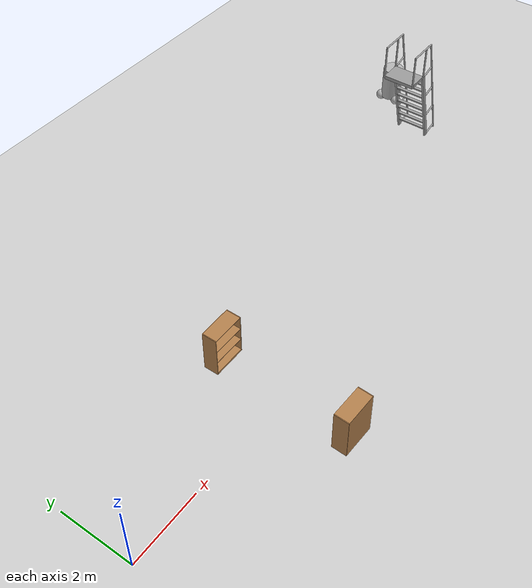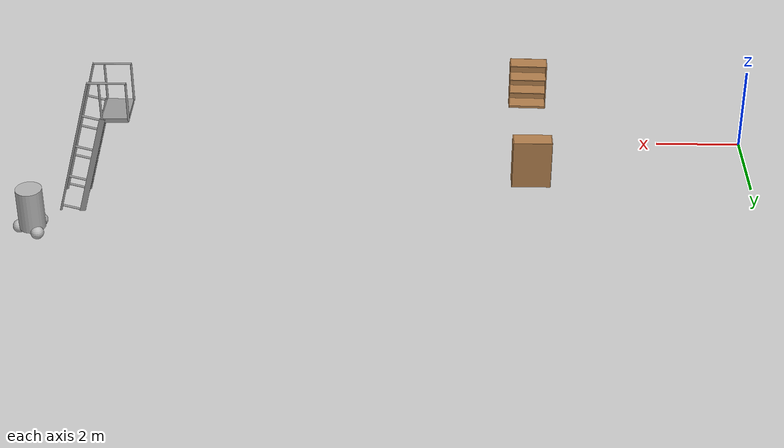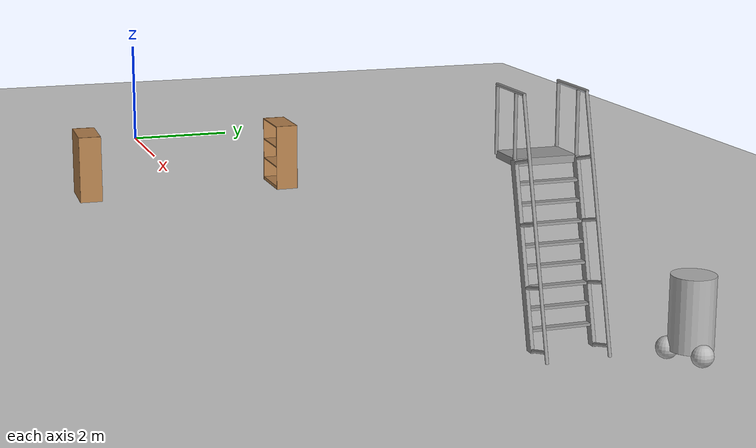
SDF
<sdf version="1.7">
 <world name="default">
  <model name="ground_plane">
   <static>1</static>
   <link name="link">
    <collision name="collision">
     <geometry><plane><normal>0 0 1</normal><size>100 100</size></plane></geometry>
     <surface>
      <contact><collide_bitmask>65535</collide_bitmask></contact>
      <friction><ode><mu>100</mu><mu2>50</mu2></ode></friction>
     </surface>
    </collision>
    <visual name="visual">
     <cast_shadows>0</cast_shadows>
     <geometry><plane><normal>0 0 1</normal><size>100 100</size></plane></geometry>
     <material>
      <script><uri>file://media/materials/scripts/gazebo.material</uri><name>Gazebo/Grey</name></script>
     </material>
    </visual>
   </link>
  </model>
  <model name="ladder_75deg_2rails">
   <static>1</static>
   <link name="step0">
    <pose>0 0.071453 0.266667 0 -0 0</pose>
    <inertial>
     <mass>9.75482</mass>
     <inertia>
      <ixx>0.00957124</ixx>
      <iyy>0.65963</iyy>
      <izz>0.666842</izz>
      <ixy>0</ixy>
      <ixz>0</ixz>
      <iyz>0</iyz>
     </inertia>
    </inertial>
    <collision name="collision"><geometry><box><size>0.9 0.1016 0.0381</size></box></geometry></collision>
    <visual name="visual">
     <geometry><box><size>0.9 0.1016 0.0381</size></box></geometry>
     <material>
      <script><uri>file://media/materials/scripts/gazebo.material</uri><name>Gazebo/Grey</name></script>
     </material>
    </visual>
   </link>
   <link name="step1">
    <pose>0 0.142906 0.533333 0 -0 0</pose>
    <inertial>
     <mass>9.75482</mass>
     <inertia>
      <ixx>0.00957124</ixx>
      <iyy>0.65963</iyy>
      <izz>0.666842</izz>
      <ixy>0</ixy>
      <ixz>0</ixz>
      <iyz>0</iyz>
     </inertia>
    </inertial>
    <collision name="collision"><geometry><box><size>0.9 0.1016 0.0381</size></box></geometry></collision>
    <visual name="visual">
     <geometry><box><size>0.9 0.1016 0.0381</size></box></geometry>
     <material>
      <script><uri>file://media/materials/scripts/gazebo.material</uri><name>Gazebo/Grey</name></script>
     </material>
    </visual>
   </link>
   <link name="step2">
    <pose>0 0.214359 0.8 0 -0 0</pose>
    <inertial>
     <mass>9.75482</mass>
     <inertia>
      <ixx>0.00957124</ixx>
      <iyy>0.65963</iyy>
      <izz>0.666842</izz>
      <ixy>0</ixy>
      <ixz>0</ixz>
      <iyz>0</iyz>
     </inertia>
    </inertial>
    <collision name="collision"><geometry><box><size>0.9 0.1016 0.0381</size></box></geometry></collision>
    <visual name="visual">
     <geometry><box><size>0.9 0.1016 0.0381</size></box></geometry>
     <material>
      <script><uri>file://media/materials/scripts/gazebo.material</uri><name>Gazebo/Grey</name></script>
     </material>
    </visual>
   </link>
   <link name="step3">
    <pose>0 0.285812 1.06667 0 -0 0</pose>
    <inertial>
     <mass>9.75482</mass>
     <inertia>
      <ixx>0.00957124</ixx>
      <iyy>0.65963</iyy>
      <izz>0.666842</izz>
      <ixy>0</ixy>
      <ixz>0</ixz>
      <iyz>0</iyz>
     </inertia>
    </inertial>
    <collision name="collision"><geometry><box><size>0.9 0.1016 0.0381</size></box></geometry></collision>
    <visual name="visual">
     <geometry><box><size>0.9 0.1016 0.0381</size></box></geometry>
     <material>
      <script><uri>file://media/materials/scripts/gazebo.material</uri><name>Gazebo/Grey</name></script>
     </material>
    </visual>
   </link>
   <link name="step4">
    <pose>0 0.357266 1.33333 0 -0 0</pose>
    <inertial>
     <mass>9.75482</mass>
     <inertia>
      <ixx>0.00957124</ixx>
      <iyy>0.65963</iyy>
      <izz>0.666842</izz>
      <ixy>0</ixy>
      <ixz>0</ixz>
      <iyz>0</iyz>
     </inertia>
    </inertial>
    <collision name="collision"><geometry><box><size>0.9 0.1016 0.0381</size></box></geometry></collision>
    <visual name="visual">
     <geometry><box><size>0.9 0.1016 0.0381</size></box></geometry>
     <material>
      <script><uri>file://media/materials/scripts/gazebo.material</uri><name>Gazebo/Grey</name></script>
     </material>
    </visual>
   </link>
   <link name="step5">
    <pose>0 0.428719 1.6 0 -0 0</pose>
    <inertial>
     <mass>9.75482</mass>
     <inertia>
      <ixx>0.00957124</ixx>
      <iyy>0.65963</iyy>
      <izz>0.666842</izz>
      <ixy>0</ixy>
      <ixz>0</ixz>
      <iyz>0</iyz>
     </inertia>
    </inertial>
    <collision name="collision"><geometry><box><size>0.9 0.1016 0.0381</size></box></geometry></collision>
    <visual name="visual">
     <geometry><box><size>0.9 0.1016 0.0381</size></box></geometry>
     <material>
      <script><uri>file://media/materials/scripts/gazebo.material</uri><name>Gazebo/Grey</name></script>
     </material>
    </visual>
   </link>
   <link name="step6">
    <pose>0 0.500172 1.86667 0 -0 0</pose>
    <inertial>
     <mass>9.75482</mass>
     <inertia>
      <ixx>0.00957124</ixx>
      <iyy>0.65963</iyy>
      <izz>0.666842</izz>
      <ixy>0</ixy>
      <ixz>0</ixz>
      <iyz>0</iyz>
     </inertia>
    </inertial>
    <collision name="collision"><geometry><box><size>0.9 0.1016 0.0381</size></box></geometry></collision>
    <visual name="visual">
     <geometry><box><size>0.9 0.1016 0.0381</size></box></geometry>
     <material>
      <script><uri>file://media/materials/scripts/gazebo.material</uri><name>Gazebo/Grey</name></script>
     </material>
    </visual>
   </link>
   <link name="step7">
    <pose>0 0.571625 2.13333 0 -0 0</pose>
    <inertial>
     <mass>9.75482</mass>
     <inertia>
      <ixx>0.00957124</ixx>
      <iyy>0.65963</iyy>
      <izz>0.666842</izz>
      <ixy>0</ixy>
      <ixz>0</ixz>
      <iyz>0</iyz>
     </inertia>
    </inertial>
    <collision name="collision"><geometry><box><size>0.9 0.1016 0.0381</size></box></geometry></collision>
    <visual name="visual">
     <geometry><box><size>0.9 0.1016 0.0381</size></box></geometry>
     <material>
      <script><uri>file://media/materials/scripts/gazebo.material</uri><name>Gazebo/Grey</name></script>
     </material>
    </visual>
   </link>
   <link name="landing">
    <pose>0 0.943078 2.4 0 -0 0</pose>
    <inertial>
     <mass>57.6072</mass>
     <inertia><ixx>1.73518</ixx><iyy>3.89545</iyy><izz>5.6167</izz><ixy>0</ixy><ixz>0</ixz><iyz>0</iyz></inertia>
    </inertial>
    <collision name="collision"><geometry><box><size>0.9 0.6 0.1016</size></box></geometry></collision>
    <visual name="visual">
     <geometry><box><size>0.9 0.6 0.1016</size></box></geometry>
     <material>
      <script><uri>file://media/materials/scripts/gazebo.material</uri><name>Gazebo/Grey</name></script>
     </material>
    </visual>
   </link>
   <link name="left_side_wall">
    <pose>-0.45 0.321539 1.2 1.309 -0 0</pose>
    <collision name="collision"><geometry><box><size>0.0508 2.56466 0.13</size></box></geometry></collision>
    <visual name="visual">
     <geometry><box><size>0.0508 2.56466 0.13</size></box></geometry>
     <material>
      <script><uri>file://media/materials/scripts/gazebo.material</uri><name>Gazebo/Grey</name></script>
     </material>
    </visual>
   </link>
   <link name="right_side_wall">
    <pose>0.45 0.321539 1.2 1.309 -0 0</pose>
    <collision name="collision"><geometry><box><size>0.0508 2.56466 0.13</size></box></geometry></collision>
    <visual name="visual">
     <geometry><box><size>0.0508 2.56466 0.13</size></box></geometry>
     <material>
      <script><uri>file://media/materials/scripts/gazebo.material</uri><name>Gazebo/Grey</name></script>
     </material>
    </visual>
   </link>
   <link name="left_railing_long">
    <pose>-0.45 -0.053461 1.66651 -0.261799 0 0</pose>
    <collision name="collision">
     <geometry><cylinder><radius>0.02413</radius><length>3.51529</length></cylinder></geometry>
    </collision>
    <visual name="visual">
     <geometry><cylinder><radius>0.02413</radius><length>3.51529</length></cylinder></geometry>
     <material>
      <script><uri>file://media/materials/scripts/gazebo.material</uri><name>Gazebo/Grey</name></script>
     </material>
    </visual>
   </link>
   <link name="left_railing_upright0">
    <pose>-0.45 -0.210089 0.056293 1.309 -0 0</pose>
    <collision name="collision">
     <geometry><cylinder><radius>0.02413</radius><length>0.482963</length></cylinder></geometry>
    </collision>
    <visual name="visual">
     <geometry><cylinder><radius>0.02413</radius><length>0.482963</length></cylinder></geometry>
     <material>
      <script><uri>file://media/materials/scripts/gazebo.material</uri><name>Gazebo/Grey</name></script>
     </material>
    </visual>
   </link>
   <link name="left_railing_upright1">
    <pose>-0.45 0.00427 0.856293 1.309 -0 0</pose>
    <collision name="collision">
     <geometry><cylinder><radius>0.02413</radius><length>0.482963</length></cylinder></geometry>
    </collision>
    <visual name="visual">
     <geometry><cylinder><radius>0.02413</radius><length>0.482963</length></cylinder></geometry>
     <material>
      <script><uri>file://media/materials/scripts/gazebo.material</uri><name>Gazebo/Grey</name></script>
     </material>
    </visual>
   </link>
   <link name="left_railing_upright2">
    <pose>-0.45 0.21863 1.65629 1.309 -0 0</pose>
    <collision name="collision">
     <geometry><cylinder><radius>0.02413</radius><length>0.482963</length></cylinder></geometry>
    </collision>
    <visual name="visual">
     <geometry><cylinder><radius>0.02413</radius><length>0.482963</length></cylinder></geometry>
     <material>
      <script><uri>file://media/materials/scripts/gazebo.material</uri><name>Gazebo/Grey</name></script>
     </material>
    </visual>
   </link>
   <link name="left_railing_upright3">
    <pose>-0.45 0.432989 2.45629 1.309 -0 0</pose>
    <collision name="collision">
     <geometry><cylinder><radius>0.02413</radius><length>0.482963</length></cylinder></geometry>
    </collision>
    <visual name="visual">
     <geometry><cylinder><radius>0.02413</radius><length>0.482963</length></cylinder></geometry>
     <material>
      <script><uri>file://media/materials/scripts/gazebo.material</uri><name>Gazebo/Grey</name></script>
     </material>
    </visual>
   </link>
   <link name="left_railing_landing_top">
    <pose>-0.45 0.818078 3.35714 1.5708 -0 0</pose>
    <collision name="collision">
     <geometry><cylinder><radius>0.02413</radius><length>0.87413</length></cylinder></geometry>
    </collision>
    <visual name="visual">
     <geometry><cylinder><radius>0.02413</radius><length>0.87413</length></cylinder></geometry>
     <material>
      <script><uri>file://media/materials/scripts/gazebo.material</uri><name>Gazebo/Grey</name></script>
     </material>
    </visual>
   </link>
   <link name="left_railing_landing_upright_0">
    <pose>-0.45 0.643078 2.86651 0 -0 0</pose>
    <collision name="collision">
     <geometry><cylinder><radius>0.02413</radius><length>0.933013</length></cylinder></geometry>
    </collision>
    <visual name="visual">
     <geometry><cylinder><radius>0.02413</radius><length>0.933013</length></cylinder></geometry>
     <material>
      <script><uri>file://media/materials/scripts/gazebo.material</uri><name>Gazebo/Grey</name></script>
     </material>
    </visual>
   </link>
   <link name="left_railing_landing_upright_1">
    <pose>-0.45 1.24308 2.86651 0 -0 0</pose>
    <collision name="collision">
     <geometry><cylinder><radius>0.02413</radius><length>0.933013</length></cylinder></geometry>
    </collision>
    <visual name="visual">
     <geometry><cylinder><radius>0.02413</radius><length>0.933013</length></cylinder></geometry>
     <material>
      <script><uri>file://media/materials/scripts/gazebo.material</uri><name>Gazebo/Grey</name></script>
     </material>
    </visual>
   </link>
   <link name="right_railing_long">
    <pose>0.45 -0.053461 1.66651 -0.261799 0 0</pose>
    <collision name="collision">
     <geometry><cylinder><radius>0.02413</radius><length>3.51529</length></cylinder></geometry>
    </collision>
    <visual name="visual">
     <geometry><cylinder><radius>0.02413</radius><length>3.51529</length></cylinder></geometry>
     <material>
      <script><uri>file://media/materials/scripts/gazebo.material</uri><name>Gazebo/Grey</name></script>
     </material>
    </visual>
   </link>
   <link name="right_railing_upright0">
    <pose>0.45 -0.210089 0.056293 1.309 -0 0</pose>
    <collision name="collision">
     <geometry><cylinder><radius>0.02413</radius><length>0.482963</length></cylinder></geometry>
    </collision>
    <visual name="visual">
     <geometry><cylinder><radius>0.02413</radius><length>0.482963</length></cylinder></geometry>
     <material>
      <script><uri>file://media/materials/scripts/gazebo.material</uri><name>Gazebo/Grey</name></script>
     </material>
    </visual>
   </link>
   <link name="right_railing_upright1">
    <pose>0.45 0.00427 0.856293 1.309 -0 0</pose>
    <collision name="collision">
     <geometry><cylinder><radius>0.02413</radius><length>0.482963</length></cylinder></geometry>
    </collision>
    <visual name="visual">
     <geometry><cylinder><radius>0.02413</radius><length>0.482963</length></cylinder></geometry>
     <material>
      <script><uri>file://media/materials/scripts/gazebo.material</uri><name>Gazebo/Grey</name></script>
     </material>
    </visual>
   </link>
   <link name="right_railing_upright2">
    <pose>0.45 0.21863 1.65629 1.309 -0 0</pose>
    <collision name="collision">
     <geometry><cylinder><radius>0.02413</radius><length>0.482963</length></cylinder></geometry>
    </collision>
    <visual name="visual">
     <geometry><cylinder><radius>0.02413</radius><length>0.482963</length></cylinder></geometry>
     <material>
      <script><uri>file://media/materials/scripts/gazebo.material</uri><name>Gazebo/Grey</name></script>
     </material>
    </visual>
   </link>
   <link name="right_railing_upright3">
    <pose>0.45 0.432989 2.45629 1.309 -0 0</pose>
    <collision name="collision">
     <geometry><cylinder><radius>0.02413</radius><length>0.482963</length></cylinder></geometry>
    </collision>
    <visual name="visual">
     <geometry><cylinder><radius>0.02413</radius><length>0.482963</length></cylinder></geometry>
     <material>
      <script><uri>file://media/materials/scripts/gazebo.material</uri><name>Gazebo/Grey</name></script>
     </material>
    </visual>
   </link>
   <link name="right_railing_landing_top">
    <pose>0.45 0.818078 3.35714 1.5708 -0 0</pose>
    <collision name="collision">
     <geometry><cylinder><radius>0.02413</radius><length>0.87413</length></cylinder></geometry>
    </collision>
    <visual name="visual">
     <geometry><cylinder><radius>0.02413</radius><length>0.87413</length></cylinder></geometry>
     <material>
      <script><uri>file://media/materials/scripts/gazebo.material</uri><name>Gazebo/Grey</name></script>
     </material>
    </visual>
   </link>
   <link name="right_railing_landing_upright_0">
    <pose>0.45 0.643078 2.86651 0 -0 0</pose>
    <collision name="collision">
     <geometry><cylinder><radius>0.02413</radius><length>0.933013</length></cylinder></geometry>
    </collision>
    <visual name="visual">
     <geometry><cylinder><radius>0.02413</radius><length>0.933013</length></cylinder></geometry>
     <material>
      <script><uri>file://media/materials/scripts/gazebo.material</uri><name>Gazebo/Grey</name></script>
     </material>
    </visual>
   </link>
   <link name="right_railing_landing_upright_1">
    <pose>0.45 1.24308 2.86651 0 -0 0</pose>
    <collision name="collision">
     <geometry><cylinder><radius>0.02413</radius><length>0.933013</length></cylinder></geometry>
    </collision>
    <visual name="visual">
     <geometry><cylinder><radius>0.02413</radius><length>0.933013</length></cylinder></geometry>
     <material>
      <script><uri>file://media/materials/scripts/gazebo.material</uri><name>Gazebo/Grey</name></script>
     </material>
    </visual>
   </link>
   <pose>15.5555 2.68019 0 0 -0 1.57394</pose>
  </model>
  <model name="HumanoidRobot">
   <static>0</static>
   <link name="body">
    <pose>0 0 0.5 0 -0 0</pose>
    <visual name="body_visual">
     <geometry><cylinder><radius>0.3</radius><length>1</length></cylinder></geometry>
     <material><ambient>0.7 0.7 0.7 1</ambient></material>
    </visual>
    <collision name="body_collision">
     <geometry><cylinder><radius>0.3</radius><length>1</length></cylinder></geometry>
    </collision>
    <inertial>
     <inertia><ixx>1</ixx><ixy>0</ixy><ixz>0</ixz><iyy>1</iyy><iyz>0</iyz><izz>1</izz></inertia>
     <mass>1</mass>
    </inertial>
   </link>
   <link name="front_ball">
    <pose>0.3 0 0 0 -0 0</pose>
    <visual name="front_ball_visual"><geometry><sphere><radius>0.15</radius></sphere></geometry></visual>
    <collision name="front_ball_collision"><geometry><sphere><radius>0.15</radius></sphere></geometry></collision>
    <inertial>
     <inertia><ixx>1</ixx><ixy>0</ixy><ixz>0</ixz><iyy>1</iyy><iyz>0</iyz><izz>1</izz></inertia>
     <mass>1</mass>
    </inertial>
   </link>
   <joint name="front_ball_joint" type="fixed">
    <parent>body</parent>
    <child>front_ball</child>
    <pose>0.3 0 0 0 -0 0</pose>
   </joint>
   <link name="left_ball">
    <pose>-0.15 0.26 0 0 -0 0</pose>
    <visual name="left_ball_visual"><geometry><sphere><radius>0.15</radius></sphere></geometry></visual>
    <collision name="left_ball_collision"><geometry><sphere><radius>0.15</radius></sphere></geometry></collision>
    <inertial>
     <inertia><ixx>1</ixx><ixy>0</ixy><ixz>0</ixz><iyy>1</iyy><iyz>0</iyz><izz>1</izz></inertia>
     <mass>1</mass>
    </inertial>
   </link>
   <joint name="left_ball_joint" type="fixed">
    <parent>body</parent>
    <child>left_ball</child>
    <pose>-0.15 0.26 0 0 -0 0</pose>
   </joint>
   <link name="right_ball">
    <pose>-0.15 -0.26 0 0 -0 0</pose>
    <visual name="right_ball_visual"><geometry><sphere><radius>0.15</radius></sphere></geometry></visual>
    <collision name="right_ball_collision"><geometry><sphere><radius>0.15</radius></sphere></geometry></collision>
    <inertial>
     <inertia><ixx>1</ixx><ixy>0</ixy><ixz>0</ixz><iyy>1</iyy><iyz>0</iyz><izz>1</izz></inertia>
     <mass>1</mass>
    </inertial>
   </link>
   <joint name="right_ball_joint" type="fixed">
    <parent>body</parent>
    <child>right_ball</child>
    <pose>-0.15 -0.26 0 0 -0 0</pose>
   </joint>
   <joint name="front_left_joint" type="fixed"><parent>front_ball</parent><child>left_ball</child></joint>
   <joint name="front_right_joint" type="fixed"><parent>front_ball</parent><child>right_ball</child></joint>
   <joint name="left_right_joint" type="fixed"><parent>left_ball</parent><child>right_ball</child></joint>
   <pose>16.5246 4.04315 0.15 0 -1e-06 -0.00089</pose>
  </model>
  <model name="bookshelf_1">
   <static>1</static>
   <link name="link">
    <inertial><mass>1</mass></inertial>
    <collision name="back">
     <pose>0 0.005 0.6 0 -0 0</pose>
     <geometry><box><size>0.9 0.01 1.2</size></box></geometry>
    </collision>
    <visual name="visual1">
     <pose>0 0.005 0.6 0 -0 0</pose>
     <geometry><box><size>0.9 0.01 1.2</size></box></geometry>
     <material>
      <script><uri>file://media/materials/scripts/gazebo.material</uri><name>Gazebo/Wood</name></script>
     </material>
    </visual>
    <collision name="left_side">
     <pose>0.45 -0.195 0.6 0 -0 0</pose>
     <geometry><box><size>0.02 0.4 1.2</size></box></geometry>
    </collision>
    <visual name="visual2">
     <pose>0.45 -0.195 0.6 0 -0 0</pose>
     <geometry><box><size>0.02 0.4 1.2</size></box></geometry>
     <material>
      <script><uri>file://media/materials/scripts/gazebo.material</uri><name>Gazebo/Wood</name></script>
     </material>
    </visual>
    <collision name="right_side">
     <pose>-0.45 -0.195 0.6 0 -0 0</pose>
     <geometry><box><size>0.02 0.4 1.2</size></box></geometry>
    </collision>
    <visual name="visual3">
     <pose>-0.45 -0.195 0.6 0 -0 0</pose>
     <geometry><box><size>0.02 0.4 1.2</size></box></geometry>
     <material>
      <script><uri>file://media/materials/scripts/gazebo.material</uri><name>Gazebo/Wood</name></script>
     </material>
    </visual>
    <collision name="bottom">
     <pose>0 -0.195 0.03 0 -0 0</pose>
     <geometry><box><size>0.88 0.4 0.06</size></box></geometry>
    </collision>
    <visual name="visual4">
     <pose>0 -0.195 0.03 0 -0 0</pose>
     <geometry><box><size>0.88 0.4 0.06</size></box></geometry>
     <material>
      <script><uri>file://media/materials/scripts/gazebo.material</uri><name>Gazebo/Wood</name></script>
     </material>
    </visual>
    <collision name="top">
     <pose>0 -0.195 1.19 0 -0 0</pose>
     <geometry><box><size>0.88 0.4 0.02</size></box></geometry>
    </collision>
    <visual name="visual5">
     <pose>0 -0.195 1.19 0 -0 0</pose>
     <geometry><box><size>0.88 0.4 0.02</size></box></geometry>
     <material>
      <script><uri>file://media/materials/scripts/gazebo.material</uri><name>Gazebo/Wood</name></script>
     </material>
    </visual>
    <collision name="low_shelf">
     <pose>0 -0.195 0.43 0 -0 0</pose>
     <geometry><box><size>0.88 0.4 0.02</size></box></geometry>
    </collision>
    <visual name="visual6">
     <pose>0 -0.195 0.43 0 -0 0</pose>
     <geometry><box><size>0.88 0.4 0.02</size></box></geometry>
     <material>
      <script><uri>file://media/materials/scripts/gazebo.material</uri><name>Gazebo/Wood</name></script>
     </material>
    </visual>
    <collision name="high_shelf">
     <pose>0 -0.195 0.8 0 -0 0</pose>
     <geometry><box><size>0.88 0.4 0.02</size></box></geometry>
    </collision>
    <visual name="visual7">
     <pose>0 -0.195 0.8 0 -0 0</pose>
     <geometry><box><size>0.88 0.4 0.02</size></box></geometry>
     <material>
      <script><uri>file://media/materials/scripts/gazebo.material</uri><name>Gazebo/Wood</name></script>
     </material>
    </visual>
   </link>
   <pose>5.16325 1.98333 0 0 -0 0</pose>
  </model>
  <model name="bookshelf_2">
   <static>1</static>
   <link name="link">
    <inertial><mass>1</mass></inertial>
    <collision name="back">
     <pose>0 0.005 0.6 0 -0 0</pose>
     <geometry><box><size>0.9 0.01 1.2</size></box></geometry>
    </collision>
    <visual name="visual1">
     <pose>0 0.005 0.6 0 -0 0</pose>
     <geometry><box><size>0.9 0.01 1.2</size></box></geometry>
     <material>
      <script><uri>file://media/materials/scripts/gazebo.material</uri><name>Gazebo/Wood</name></script>
     </material>
    </visual>
    <collision name="left_side">
     <pose>0.45 -0.195 0.6 0 -0 0</pose>
     <geometry><box><size>0.02 0.4 1.2</size></box></geometry>
    </collision>
    <visual name="visual2">
     <pose>0.45 -0.195 0.6 0 -0 0</pose>
     <geometry><box><size>0.02 0.4 1.2</size></box></geometry>
     <material>
      <script><uri>file://media/materials/scripts/gazebo.material</uri><name>Gazebo/Wood</name></script>
     </material>
    </visual>
    <collision name="right_side">
     <pose>-0.45 -0.195 0.6 0 -0 0</pose>
     <geometry><box><size>0.02 0.4 1.2</size></box></geometry>
    </collision>
    <visual name="visual3">
     <pose>-0.45 -0.195 0.6 0 -0 0</pose>
     <geometry><box><size>0.02 0.4 1.2</size></box></geometry>
     <material>
      <script><uri>file://media/materials/scripts/gazebo.material</uri><name>Gazebo/Wood</name></script>
     </material>
    </visual>
    <collision name="bottom">
     <pose>0 -0.195 0.03 0 -0 0</pose>
     <geometry><box><size>0.88 0.4 0.06</size></box></geometry>
    </collision>
    <visual name="visual4">
     <pose>0 -0.195 0.03 0 -0 0</pose>
     <geometry><box><size>0.88 0.4 0.06</size></box></geometry>
     <material>
      <script><uri>file://media/materials/scripts/gazebo.material</uri><name>Gazebo/Wood</name></script>
     </material>
    </visual>
    <collision name="top">
     <pose>0 -0.195 1.19 0 -0 0</pose>
     <geometry><box><size>0.88 0.4 0.02</size></box></geometry>
    </collision>
    <visual name="visual5">
     <pose>0 -0.195 1.19 0 -0 0</pose>
     <geometry><box><size>0.88 0.4 0.02</size></box></geometry>
     <material>
      <script><uri>file://media/materials/scripts/gazebo.material</uri><name>Gazebo/Wood</name></script>
     </material>
    </visual>
    <collision name="low_shelf">
     <pose>0 -0.195 0.43 0 -0 0</pose>
     <geometry><box><size>0.88 0.4 0.02</size></box></geometry>
    </collision>
    <visual name="visual6">
     <pose>0 -0.195 0.43 0 -0 0</pose>
     <geometry><box><size>0.88 0.4 0.02</size></box></geometry>
     <material>
      <script><uri>file://media/materials/scripts/gazebo.material</uri><name>Gazebo/Wood</name></script>
     </material>
    </visual>
    <collision name="high_shelf">
     <pose>0 -0.195 0.8 0 -0 0</pose>
     <geometry><box><size>0.88 0.4 0.02</size></box></geometry>
    </collision>
    <visual name="visual7">
     <pose>0 -0.195 0.8 0 -0 0</pose>
     <geometry><box><size>0.88 0.4 0.02</size></box></geometry>
     <material>
      <script><uri>file://media/materials/scripts/gazebo.material</uri><name>Gazebo/Wood</name></script>
     </material>
    </visual>
   </link>
   <pose>5.08269 -2.06296 0 0 -0 3.10947</pose>
  </model>
 </world>
</sdf>
